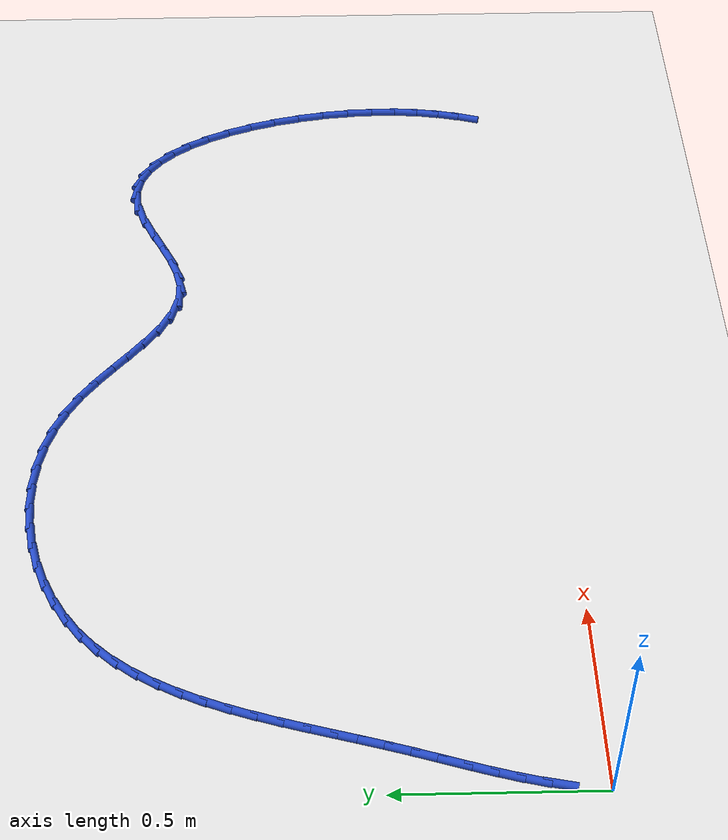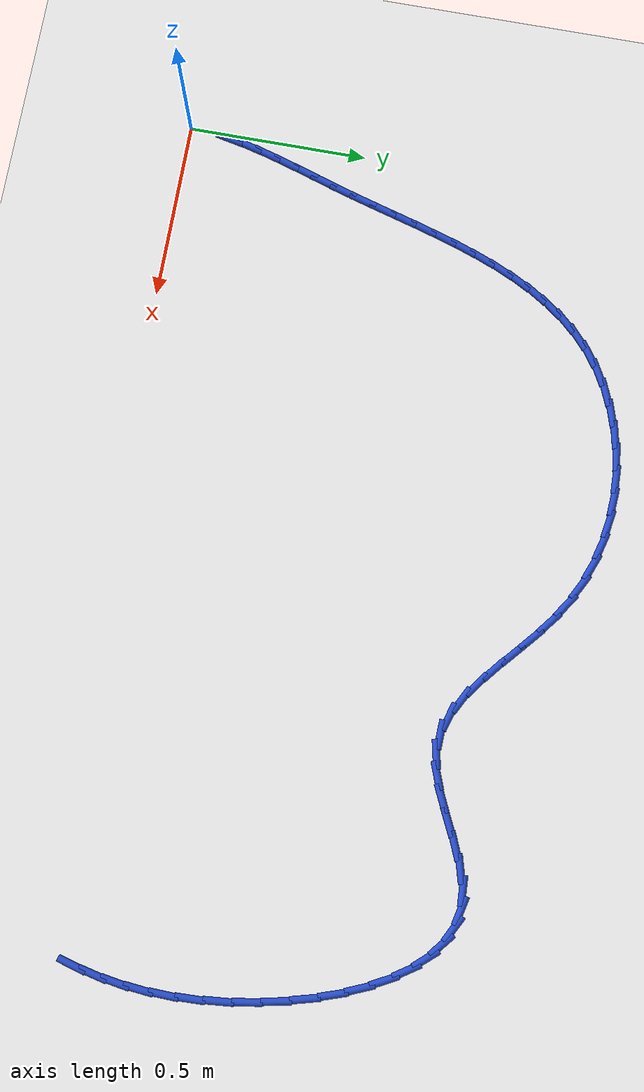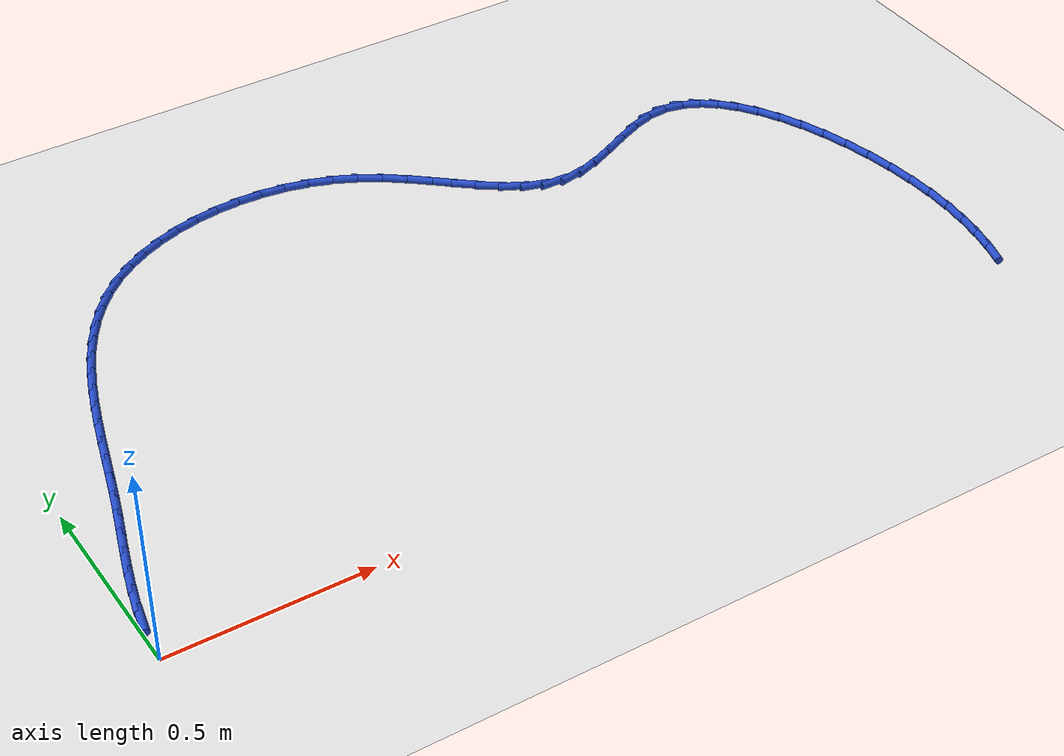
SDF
<sdf version="1.6">
 <world name="default">
  <model name="ground_plane">
   <static>1</static>
   <link name="link">
    <collision name="collision">
     <geometry><plane><normal>0 0 1</normal><size>100 100</size></plane></geometry>
     <surface><friction><ode><mu>100</mu><mu2>50</mu2></ode></friction></surface>
    </collision>
    <visual name="visual">
     <cast_shadows>0</cast_shadows>
     <geometry><plane><normal>0 0 1</normal><size>100 100</size></plane></geometry>
     <material>
      <script><uri>file://media/materials/scripts/gazebo.material</uri><name>Gazebo/WhiteGlow</name></script>
     </material>
    </visual>
   </link>
  </model>
  <model name="line">
   <link name="link_2">
    <pose>0.01386577655153484 0.11525291461923548 0.01 0 1.57 1.3590811794258975</pose>
    <collision name="collision">
     <geometry><cylinder><radius>0.01</radius><length>0.08</length></cylinder></geometry>
    </collision>
    <visual name="visual">
     <material>
      <script><name>Gazebo/Blue</name><uri>file://media/materials/scripts/gazebo.material</uri></script>
     </material>
     <geometry><cylinder><radius>0.01</radius><length>0.08</length></cylinder></geometry>
    </visual>
   </link>
   <link name="link_3">
    <pose>0.026100228607279605 0.17217424236328022 0.01 0 1.57 1.3148711279446732</pose>
    <collision name="collision">
     <geometry><cylinder><radius>0.01</radius><length>0.08</length></cylinder></geometry>
    </collision>
    <visual name="visual">
     <material>
      <script><name>Gazebo/Blue</name><uri>file://media/materials/scripts/gazebo.material</uri></script>
     </material>
     <geometry><cylinder><radius>0.01</radius><length>0.08</length></cylinder></geometry>
    </visual>
   </link>
   <link name="link_4">
    <pose>0.04095223064226751 0.22893426433253472 0.01 0 1.57 1.2836579148679896</pose>
    <collision name="collision">
     <geometry><cylinder><radius>0.01</radius><length>0.08</length></cylinder></geometry>
    </collision>
    <visual name="visual">
     <material>
      <script><name>Gazebo/Blue</name><uri>file://media/materials/scripts/gazebo.material</uri></script>
     </material>
     <geometry><cylinder><radius>0.01</radius><length>0.08</length></cylinder></geometry>
    </visual>
   </link>
   <link name="link_5">
    <pose>0.05773416325094213 0.28576456597869265 0.01 0 1.57 1.2651959013617817</pose>
    <collision name="collision">
     <geometry><cylinder><radius>0.01</radius><length>0.08</length></cylinder></geometry>
    </collision>
    <visual name="visual">
     <material>
      <script><name>Gazebo/Blue</name><uri>file://media/materials/scripts/gazebo.material</uri></script>
     </material>
     <geometry><cylinder><radius>0.01</radius><length>0.08</length></cylinder></geometry>
    </visual>
   </link>
   <link name="link_6">
    <pose>0.0757584070277472 0.3428967327534479 0.01 0 1.57 1.259113566414368</pose>
    <collision name="collision">
     <geometry><cylinder><radius>0.01</radius><length>0.08</length></cylinder></geometry>
    </collision>
    <visual name="visual">
     <material>
      <script><name>Gazebo/Blue</name><uri>file://media/materials/scripts/gazebo.material</uri></script>
     </material>
     <geometry><cylinder><radius>0.01</radius><length>0.08</length></cylinder></geometry>
    </visual>
   </link>
   <link name="link_7">
    <pose>0.09433734256712625 0.40056235010849417 0.01 0 1.57 1.2650073677703846</pose>
    <collision name="collision">
     <geometry><cylinder><radius>0.01</radius><length>0.08</length></cylinder></geometry>
    </collision>
    <visual name="visual">
     <material>
      <script><name>Gazebo/Blue</name><uri>file://media/materials/scripts/gazebo.material</uri></script>
     </material>
     <geometry><cylinder><radius>0.01</radius><length>0.08</length></cylinder></geometry>
    </visual>
   </link>
   <link name="link_8">
    <pose>0.11278335046352307 0.4589930034955255 0.01 0 1.57 1.2800323676406635</pose>
    <collision name="collision">
     <geometry><cylinder><radius>0.01</radius><length>0.08</length></cylinder></geometry>
    </collision>
    <visual name="visual">
     <material>
      <script><name>Gazebo/Blue</name><uri>file://media/materials/scripts/gazebo.material</uri></script>
     </material>
     <geometry><cylinder><radius>0.01</radius><length>0.08</length></cylinder></geometry>
    </visual>
   </link>
   <link name="link_9">
    <pose>0.13054385202172458 0.5183440488185911 0.01 0 1.57 1.2909774228402568</pose>
    <collision name="collision">
     <geometry><cylinder><radius>0.01</radius><length>0.08</length></cylinder></geometry>
    </collision>
    <visual name="visual">
     <material>
      <script><name>Gazebo/Blue</name><uri>file://media/materials/scripts/gazebo.material</uri></script>
     </material>
     <geometry><cylinder><radius>0.01</radius><length>0.08</length></cylinder></geometry>
    </visual>
   </link>
   <link name="link_10">
    <pose>0.14779051001666937 0.5783620126774921 0.01 0 1.57 1.2937372939414786</pose>
    <collision name="collision">
     <geometry><cylinder><radius>0.01</radius><length>0.08</length></cylinder></geometry>
    </collision>
    <visual name="visual">
     <material>
      <script><name>Gazebo/Blue</name><uri>file://media/materials/scripts/gazebo.material</uri></script>
     </material>
     <geometry><cylinder><radius>0.01</radius><length>0.08</length></cylinder></geometry>
    </visual>
   </link>
   <link name="link_11">
    <pose>0.16493675277086434 0.6386569466914084 0.01 0 1.57 1.2884364461176991</pose>
    <collision name="collision">
     <geometry><cylinder><radius>0.01</radius><length>0.08</length></cylinder></geometry>
    </collision>
    <visual name="visual">
     <material>
      <script><name>Gazebo/Blue</name><uri>file://media/materials/scripts/gazebo.material</uri></script>
     </material>
     <geometry><cylinder><radius>0.01</radius><length>0.08</length></cylinder></geometry>
    </visual>
   </link>
   <link name="link_12">
    <pose>0.18239617726653856 0.6988388072722728 0.01 0 1.57 1.27500115672307</pose>
    <collision name="collision">
     <geometry><cylinder><radius>0.01</radius><length>0.08</length></cylinder></geometry>
    </collision>
    <visual name="visual">
     <material>
      <script><name>Gazebo/Blue</name><uri>file://media/materials/scripts/gazebo.material</uri></script>
     </material>
     <geometry><cylinder><radius>0.01</radius><length>0.08</length></cylinder></geometry>
    </visual>
   </link>
   <link name="link_13">
    <pose>0.20058238048592122 0.7585175508320178 0.01 0 1.57 1.2531638627250472</pose>
    <collision name="collision">
     <geometry><cylinder><radius>0.01</radius><length>0.08</length></cylinder></geometry>
    </collision>
    <visual name="visual">
     <material>
      <script><name>Gazebo/Blue</name><uri>file://media/materials/scripts/gazebo.material</uri></script>
     </material>
     <geometry><cylinder><radius>0.01</radius><length>0.08</length></cylinder></geometry>
    </visual>
   </link>
   <link name="link_14">
    <pose>0.21990895941124153 0.8173031337825761 0.01 0 1.57 1.2224770346528062</pose>
    <collision name="collision">
     <geometry><cylinder><radius>0.01</radius><length>0.08</length></cylinder></geometry>
    </collision>
    <visual name="visual">
     <material>
      <script><name>Gazebo/Blue</name><uri>file://media/materials/scripts/gazebo.material</uri></script>
     </material>
     <geometry><cylinder><radius>0.01</radius><length>0.08</length></cylinder></geometry>
    </visual>
   </link>
   <link name="link_15">
    <pose>0.24078951102472868 0.8748055125358808 0.01 0 1.57 1.1823405745901034</pose>
    <collision name="collision">
     <geometry><cylinder><radius>0.01</radius><length>0.08</length></cylinder></geometry>
    </collision>
    <visual name="visual">
     <material>
      <script><name>Gazebo/Blue</name><uri>file://media/materials/scripts/gazebo.material</uri></script>
     </material>
     <geometry><cylinder><radius>0.01</radius><length>0.08</length></cylinder></geometry>
    </visual>
   </link>
   <link name="link_16">
    <pose>0.2636376323086118 0.9306346435038642 0.01 0 1.57 1.1320549828559676</pose>
    <collision name="collision">
     <geometry><cylinder><radius>0.01</radius><length>0.08</length></cylinder></geometry>
    </collision>
    <visual name="visual">
     <material>
      <script><name>Gazebo/Blue</name><uri>file://media/materials/scripts/gazebo.material</uri></script>
     </material>
     <geometry><cylinder><radius>0.01</radius><length>0.08</length></cylinder></geometry>
    </visual>
   </link>
   <link name="link_17">
    <pose>0.28886692024512 0.9844004830984588 0.01 0 1.57 1.0709178700684836</pose>
    <collision name="collision">
     <geometry><cylinder><radius>0.01</radius><length>0.08</length></cylinder></geometry>
    </collision>
    <visual name="visual">
     <material>
      <script><name>Gazebo/Blue</name><uri>file://media/materials/scripts/gazebo.material</uri></script>
     </material>
     <geometry><cylinder><radius>0.01</radius><length>0.08</length></cylinder></geometry>
    </visual>
   </link>
   <link name="link_18">
    <pose>0.3168909718164825 1.0357129877315976 0.01 0 1.57 0.9983838453431676</pose>
    <collision name="collision">
     <geometry><cylinder><radius>0.01</radius><length>0.08</length></cylinder></geometry>
    </collision>
    <visual name="visual">
     <material>
      <script><name>Gazebo/Blue</name><uri>file://media/materials/scripts/gazebo.material</uri></script>
     </material>
     <geometry><cylinder><radius>0.01</radius><length>0.08</length></cylinder></geometry>
    </visual>
   </link>
   <link name="link_19">
    <pose>0.3481233840049285 1.084182113815213 0.01 0 1.57 0.9143001866337734</pose>
    <collision name="collision">
     <geometry><cylinder><radius>0.01</radius><length>0.08</length></cylinder></geometry>
    </collision>
    <visual name="visual">
     <material>
      <script><name>Gazebo/Blue</name><uri>file://media/materials/scripts/gazebo.material</uri></script>
     </material>
     <geometry><cylinder><radius>0.01</radius><length>0.08</length></cylinder></geometry>
    </visual>
   </link>
   <link name="link_20">
    <pose>0.38297775379268717 1.1294178177612377 0.01 0 1.57 0.8192019366085078</pose>
    <collision name="collision">
     <geometry><cylinder><radius>0.01</radius><length>0.08</length></cylinder></geometry>
    </collision>
    <visual name="visual">
     <material>
      <script><name>Gazebo/Blue</name><uri>file://media/materials/scripts/gazebo.material</uri></script>
     </material>
     <geometry><cylinder><radius>0.01</radius><length>0.08</length></cylinder></geometry>
    </visual>
   </link>
   <link name="link_21">
    <pose>0.4218676781619875 1.1710300559816045 0.01 0 1.57 0.7145937820327017</pose>
    <collision name="collision">
     <geometry><cylinder><radius>0.01</radius><length>0.08</length></cylinder></geometry>
    </collision>
    <visual name="visual">
     <material>
      <script><name>Gazebo/Blue</name><uri>file://media/materials/scripts/gazebo.material</uri></script>
     </material>
     <geometry><cylinder><radius>0.01</radius><length>0.08</length></cylinder></geometry>
    </visual>
   </link>
   <link name="link_22">
    <pose>0.4652067540950589 1.208628784888246 0.01 0 1.57 0.6047818996127332</pose>
    <collision name="collision">
     <geometry><cylinder><radius>0.01</radius><length>0.08</length></cylinder></geometry>
    </collision>
    <visual name="visual">
     <material>
      <script><name>Gazebo/Blue</name><uri>file://media/materials/scripts/gazebo.material</uri></script>
     </material>
     <geometry><cylinder><radius>0.01</radius><length>0.08</length></cylinder></geometry>
    </visual>
   </link>
   <link name="link_23">
    <pose>0.5132656793358205 1.241846149881398 0.01 0 1.57 0.49996921096600055</pose>
    <collision name="collision">
     <geometry><cylinder><radius>0.01</radius><length>0.08</length></cylinder></geometry>
    </collision>
    <visual name="visual">
     <material>
      <script><name>Gazebo/Blue</name><uri>file://media/materials/scripts/gazebo.material</uri></script>
     </material>
     <geometry><cylinder><radius>0.01</radius><length>0.08</length></cylinder></geometry>
    </visual>
   </link>
   <link name="link_24">
    <pose>0.5655870509023512 1.2704273537762982 0.01 0 1.57 0.40142719704158564</pose>
    <collision name="collision">
     <geometry><cylinder><radius>0.01</radius><length>0.08</length></cylinder></geometry>
    </collision>
    <visual name="visual">
     <material>
      <script><name>Gazebo/Blue</name><uri>file://media/materials/scripts/gazebo.material</uri></script>
     </material>
     <geometry><cylinder><radius>0.01</radius><length>0.08</length></cylinder></geometry>
    </visual>
   </link>
   <link name="link_25">
    <pose>0.621482158363254 1.2941535161526936 0.01 0 1.57 0.3072726824263532</pose>
    <collision name="collision">
     <geometry><cylinder><radius>0.01</radius><length>0.08</length></cylinder></geometry>
    </collision>
    <visual name="visual">
     <material>
      <script><name>Gazebo/Blue</name><uri>file://media/materials/scripts/gazebo.material</uri></script>
     </material>
     <geometry><cylinder><radius>0.01</radius><length>0.08</length></cylinder></geometry>
    </visual>
   </link>
   <link name="link_26">
    <pose>0.6802621959078268 1.312805771400558 0.01 0 1.57 0.2156855179569332</pose>
    <collision name="collision">
     <geometry><cylinder><radius>0.01</radius><length>0.08</length></cylinder></geometry>
    </collision>
    <visual name="visual">
     <material>
      <script><name>Gazebo/Blue</name><uri>file://media/materials/scripts/gazebo.material</uri></script>
     </material>
     <geometry><cylinder><radius>0.01</radius><length>0.08</length></cylinder></geometry>
    </visual>
   </link>
   <link name="link_27">
    <pose>0.7412383577253676 1.326165253909868 0.01 0 1.57 0.12494444446800197</pose>
    <collision name="collision">
     <geometry><cylinder><radius>0.01</radius><length>0.08</length></cylinder></geometry>
    </collision>
    <visual name="visual">
     <material>
      <script><name>Gazebo/Blue</name><uri>file://media/materials/scripts/gazebo.material</uri></script>
     </material>
     <geometry><cylinder><radius>0.01</radius><length>0.08</length></cylinder></geometry>
    </visual>
   </link>
   <link name="link_28">
    <pose>0.803721838005173 1.3340130980705964 0.01 0 1.57 0.03343577378511071</pose>
    <collision name="collision">
     <geometry><cylinder><radius>0.01</radius><length>0.08</length></cylinder></geometry>
    </collision>
    <visual name="visual">
     <material>
      <script><name>Gazebo/Blue</name><uri>file://media/materials/scripts/gazebo.material</uri></script>
     </material>
     <geometry><cylinder><radius>0.01</radius><length>0.08</length></cylinder></geometry>
    </visual>
   </link>
   <link name="link_29">
    <pose>0.8670238309365417 1.3361304382727188 0.01 0 1.57 -0.06033856531937551</pose>
    <collision name="collision">
     <geometry><cylinder><radius>0.01</radius><length>0.08</length></cylinder></geometry>
    </collision>
    <visual name="visual">
     <material>
      <script><name>Gazebo/Blue</name><uri>file://media/materials/scripts/gazebo.material</uri></script>
     </material>
     <geometry><cylinder><radius>0.01</radius><length>0.08</length></cylinder></geometry>
    </visual>
   </link>
   <link name="link_30">
    <pose>0.9304555307087701 1.3322984089062087 0.01 0 1.57 -0.15773469241341845</pose>
    <collision name="collision">
     <geometry><cylinder><radius>0.01</radius><length>0.08</length></cylinder></geometry>
    </collision>
    <visual name="visual">
     <material>
      <script><name>Gazebo/Blue</name><uri>file://media/materials/scripts/gazebo.material</uri></script>
     </material>
     <geometry><cylinder><radius>0.01</radius><length>0.08</length></cylinder></geometry>
    </visual>
   </link>
   <link name="link_31">
    <pose>0.9933281315111571 1.322298144361042 0.01 0 1.57 -0.2599070789573445</pose>
    <collision name="collision">
     <geometry><cylinder><radius>0.01</radius><length>0.08</length></cylinder></geometry>
    </collision>
    <visual name="visual">
     <material>
      <script><name>Gazebo/Blue</name><uri>file://media/materials/scripts/gazebo.material</uri></script>
     </material>
     <geometry><cylinder><radius>0.01</radius><length>0.08</length></cylinder></geometry>
    </visual>
   </link>
   <link name="link_32">
    <pose>1.054952827532999 1.3059107790271922 0.01 0 1.57 -0.367705183871953</pose>
    <collision name="collision">
     <geometry><cylinder><radius>0.01</radius><length>0.08</length></cylinder></geometry>
    </collision>
    <visual name="visual">
     <material>
      <script><name>Gazebo/Blue</name><uri>file://media/materials/scripts/gazebo.material</uri></script>
     </material>
     <geometry><cylinder><radius>0.01</radius><length>0.08</length></cylinder></geometry>
    </visual>
   </link>
   <link name="link_33">
    <pose>1.1146408129635943 1.2829174472946352 0.01 0 1.57 -0.48151983372926044</pose>
    <collision name="collision">
     <geometry><cylinder><radius>0.01</radius><length>0.08</length></cylinder></geometry>
    </collision>
    <visual name="visual">
     <material>
      <script><name>Gazebo/Blue</name><uri>file://media/materials/scripts/gazebo.material</uri></script>
     </material>
     <geometry><cylinder><radius>0.01</radius><length>0.08</length></cylinder></geometry>
    </visual>
   </link>
   <link name="link_34">
    <pose>1.1717034833889677 1.2530996833517214 0.01 0 1.57 -0.5910918396478422</pose>
    <collision name="collision">
     <geometry><cylinder><radius>0.01</radius><length>0.08</length></cylinder></geometry>
    </collision>
    <visual name="visual">
     <material>
      <script><name>Gazebo/Blue</name><uri>file://media/materials/scripts/gazebo.material</uri></script>
     </material>
     <geometry><cylinder><radius>0.01</radius><length>0.08</length></cylinder></geometry>
    </visual>
   </link>
   <link name="link_35">
    <pose>1.2257488259638794 1.2168277937558476 0.01 0 1.57 -0.6671867549664544</pose>
    <collision name="collision">
     <geometry><cylinder><radius>0.01</radius><length>0.08</length></cylinder></geometry>
    </collision>
    <visual name="visual">
     <material>
      <script><name>Gazebo/Blue</name><uri>file://media/materials/scripts/gazebo.material</uri></script>
     </material>
     <geometry><cylinder><radius>0.01</radius><length>0.08</length></cylinder></geometry>
    </visual>
   </link>
   <link name="link_36">
    <pose>1.2772757904174872 1.1762407602425045 0.01 0 1.57 -0.70693661563271</pose>
    <collision name="collision">
     <geometry><cylinder><radius>0.01</radius><length>0.08</length></cylinder></geometry>
    </collision>
    <visual name="visual">
     <material>
      <script><name>Gazebo/Blue</name><uri>file://media/materials/scripts/gazebo.material</uri></script>
     </material>
     <geometry><cylinder><radius>0.01</radius><length>0.08</length></cylinder></geometry>
    </visual>
   </link>
   <link name="link_37">
    <pose>1.3269499365797546 1.1338083070027951 0.01 0 1.57 -0.7115668724138712</pose>
    <collision name="collision">
     <geometry><cylinder><radius>0.01</radius><length>0.08</length></cylinder></geometry>
    </collision>
    <visual name="visual">
     <material>
      <script><name>Gazebo/Blue</name><uri>file://media/materials/scripts/gazebo.material</uri></script>
     </material>
     <geometry><cylinder><radius>0.01</radius><length>0.08</length></cylinder></geometry>
    </visual>
   </link>
   <link name="link_38">
    <pose>1.3754368242806454 1.0920001582278231 0.01 0 1.57 -0.6790731179405616</pose>
    <collision name="collision">
     <geometry><cylinder><radius>0.01</radius><length>0.08</length></cylinder></geometry>
    </collision>
    <visual name="visual">
     <material>
      <script><name>Gazebo/Blue</name><uri>file://media/materials/scripts/gazebo.material</uri></script>
     </material>
     <geometry><cylinder><radius>0.01</radius><length>0.08</length></cylinder></geometry>
    </visual>
   </link>
   <link name="link_39">
    <pose>1.4234020133501237 1.0532860381086926 0.01 0 1.57 -0.6033507489742822</pose>
    <collision name="collision">
     <geometry><cylinder><radius>0.01</radius><length>0.08</length></cylinder></geometry>
    </collision>
    <visual name="visual">
     <material>
      <script><name>Gazebo/Blue</name><uri>file://media/materials/scripts/gazebo.material</uri></script>
     </material>
     <geometry><cylinder><radius>0.01</radius><length>0.08</length></cylinder></geometry>
    </visual>
   </link>
   <link name="link_40">
    <pose>1.471511063618152 1.020135670836508 0.01 0 1.57 -0.47434478672188135</pose>
    <collision name="collision">
     <geometry><cylinder><radius>0.01</radius><length>0.08</length></cylinder></geometry>
    </collision>
    <visual name="visual">
     <material>
      <script><name>Gazebo/Blue</name><uri>file://media/materials/scripts/gazebo.material</uri></script>
     </material>
     <geometry><cylinder><radius>0.01</radius><length>0.08</length></cylinder></geometry>
    </visual>
   </link>
   <link name="link_41">
    <pose>1.5204295349146955 0.9950187806023719 0.01 0 1.57 -0.2822498783379509</pose>
    <collision name="collision">
     <geometry><cylinder><radius>0.01</radius><length>0.08</length></cylinder></geometry>
    </collision>
    <visual name="visual">
     <material>
      <script><name>Gazebo/Blue</name><uri>file://media/materials/scripts/gazebo.material</uri></script>
     </material>
     <geometry><cylinder><radius>0.01</radius><length>0.08</length></cylinder></geometry>
    </visual>
   </link>
   <link name="link_42">
    <pose>1.570822987069717 0.9804050915973891 0.01 0 1.57 -0.03137956941343361</pose>
    <collision name="collision">
     <geometry><cylinder><radius>0.01</radius><length>0.08</length></cylinder></geometry>
    </collision>
    <visual name="visual">
     <material>
      <script><name>Gazebo/Blue</name><uri>file://media/materials/scripts/gazebo.material</uri></script>
     </material>
     <geometry><cylinder><radius>0.01</radius><length>0.08</length></cylinder></geometry>
    </visual>
   </link>
   <link name="link_43">
    <pose>1.6233551454408792 0.9787561138147718 0.01 0 1.57 0.21255310726368512</pose>
    <collision name="collision">
     <geometry><cylinder><radius>0.01</radius><length>0.08</length></cylinder></geometry>
    </collision>
    <visual name="visual">
     <material>
      <script><name>Gazebo/Blue</name><uri>file://media/materials/scripts/gazebo.material</uri></script>
     </material>
     <geometry><cylinder><radius>0.01</radius><length>0.08</length></cylinder></geometry>
    </visual>
   </link>
   <link name="link_44">
    <pose>1.6782590988857033 0.9906051005877737 0.01 0 1.57 0.3631822019763246</pose>
    <collision name="collision">
     <geometry><cylinder><radius>0.01</radius><length>0.08</length></cylinder></geometry>
    </collision>
    <visual name="visual">
     <material>
      <script><name>Gazebo/Blue</name><uri>file://media/materials/scripts/gazebo.material</uri></script>
     </material>
     <geometry><cylinder><radius>0.01</radius><length>0.08</length></cylinder></geometry>
    </visual>
   </link>
   <link name="link_45">
    <pose>1.7347857804391211 1.012087516150485 0.01 0 1.57 0.43544948144664286</pose>
    <collision name="collision">
     <geometry><cylinder><radius>0.01</radius><length>0.08</length></cylinder></geometry>
    </collision>
    <visual name="visual">
     <material>
      <script><name>Gazebo/Blue</name><uri>file://media/materials/scripts/gazebo.material</uri></script>
     </material>
     <geometry><cylinder><radius>0.01</radius><length>0.08</length></cylinder></geometry>
    </visual>
   </link>
   <link name="link_46">
    <pose>1.7920498580949618 1.038728672153698 0.01 0 1.57 0.4462308251281981</pose>
    <collision name="collision">
     <geometry><cylinder><radius>0.01</radius><length>0.08</length></cylinder></geometry>
    </collision>
    <visual name="visual">
     <material>
      <script><name>Gazebo/Blue</name><uri>file://media/materials/scripts/gazebo.material</uri></script>
     </material>
     <geometry><cylinder><radius>0.01</radius><length>0.08</length></cylinder></geometry>
    </visual>
   </link>
   <link name="link_47">
    <pose>1.8491659998470547 1.0660538802482045 0.01 0 1.57 0.39732124639767985</pose>
    <collision name="collision">
     <geometry><cylinder><radius>0.01</radius><length>0.08</length></cylinder></geometry>
    </collision>
    <visual name="visual">
     <material>
      <script><name>Gazebo/Blue</name><uri>file://media/materials/scripts/gazebo.material</uri></script>
     </material>
     <geometry><cylinder><radius>0.01</radius><length>0.08</length></cylinder></geometry>
    </visual>
   </link>
   <link name="link_48">
    <pose>1.9052488736892295 1.089588452084797 0.01 0 1.57 0.27477548984022965</pose>
    <collision name="collision">
     <geometry><cylinder><radius>0.01</radius><length>0.08</length></cylinder></geometry>
    </collision>
    <visual name="visual">
     <material>
      <script><name>Gazebo/Blue</name><uri>file://media/materials/scripts/gazebo.material</uri></script>
     </material>
     <geometry><cylinder><radius>0.01</radius><length>0.08</length></cylinder></geometry>
    </visual>
   </link>
   <link name="link_49">
    <pose>1.9594131476153167 1.104857699314269 0.01 0 1.57 0.05362298056653864</pose>
    <collision name="collision">
     <geometry><cylinder><radius>0.01</radius><length>0.08</length></cylinder></geometry>
    </collision>
    <visual name="visual">
     <material>
      <script><name>Gazebo/Blue</name><uri>file://media/materials/scripts/gazebo.material</uri></script>
     </material>
     <geometry><cylinder><radius>0.01</radius><length>0.08</length></cylinder></geometry>
    </visual>
   </link>
   <link name="link_50">
    <pose>2.0108045132462475 1.107616101880759 0.01 0 1.57 -0.22054669229838392</pose>
    <collision name="collision">
     <geometry><cylinder><radius>0.01</radius><length>0.08</length></cylinder></geometry>
    </collision>
    <visual name="visual">
     <material>
      <script><name>Gazebo/Blue</name><uri>file://media/materials/scripts/gazebo.material</uri></script>
     </material>
     <geometry><cylinder><radius>0.01</radius><length>0.08</length></cylinder></geometry>
    </visual>
   </link>
   <link name="link_51">
    <pose>2.059000867022516 1.096810791591668 0.01 0 1.57 -0.47483819065993577</pose>
    <collision name="collision">
     <geometry><cylinder><radius>0.01</radius><length>0.08</length></cylinder></geometry>
    </collision>
    <visual name="visual">
     <material>
      <script><name>Gazebo/Blue</name><uri>file://media/materials/scripts/gazebo.material</uri></script>
     </material>
     <geometry><cylinder><radius>0.01</radius><length>0.08</length></cylinder></geometry>
    </visual>
   </link>
   <link name="link_52">
    <pose>2.1038971746488007 1.0737310577946892 0.01 0 1.57 -0.6865602318286195</pose>
    <collision name="collision">
     <geometry><cylinder><radius>0.01</radius><length>0.08</length></cylinder></geometry>
    </collision>
    <visual name="visual">
     <material>
      <script><name>Gazebo/Blue</name><uri>file://media/materials/scripts/gazebo.material</uri></script>
     </material>
     <geometry><cylinder><radius>0.01</radius><length>0.08</length></cylinder></geometry>
    </visual>
   </link>
   <link name="link_53">
    <pose>2.1453957034036257 1.0397201258009423 0.01 0 1.57 -0.8538664117070126</pose>
    <collision name="collision">
     <geometry><cylinder><radius>0.01</radius><length>0.08</length></cylinder></geometry>
    </collision>
    <visual name="visual">
     <material>
      <script><name>Gazebo/Blue</name><uri>file://media/materials/scripts/gazebo.material</uri></script>
     </material>
     <geometry><cylinder><radius>0.01</radius><length>0.08</length></cylinder></geometry>
    </visual>
   </link>
   <link name="link_54">
    <pose>2.1833987205655143 0.9961212209215462 0.01 0 1.57 -0.9848351081472978</pose>
    <collision name="collision">
     <geometry><cylinder><radius>0.01</radius><length>0.08</length></cylinder></geometry>
    </collision>
    <visual name="visual">
     <material>
      <script><name>Gazebo/Blue</name><uri>file://media/materials/scripts/gazebo.material</uri></script>
     </material>
     <geometry><cylinder><radius>0.01</radius><length>0.08</length></cylinder></geometry>
    </visual>
   </link>
   <link name="link_55">
    <pose>2.2178084934129907 0.9442775684676206 0.01 0 1.57 -1.0889843813083562</pose>
    <collision name="collision">
     <geometry><cylinder><radius>0.01</radius><length>0.08</length></cylinder></geometry>
    </collision>
    <visual name="visual">
     <material>
      <script><name>Gazebo/Blue</name><uri>file://media/materials/scripts/gazebo.material</uri></script>
     </material>
     <geometry><cylinder><radius>0.01</radius><length>0.08</length></cylinder></geometry>
    </visual>
   </link>
   <link name="link_56">
    <pose>2.2485272892245787 0.8855323937502857 0.01 0 1.57 -1.1741915837412584</pose>
    <collision name="collision">
     <geometry><cylinder><radius>0.01</radius><length>0.08</length></cylinder></geometry>
    </collision>
    <visual name="visual">
     <material>
      <script><name>Gazebo/Blue</name><uri>file://media/materials/scripts/gazebo.material</uri></script>
     </material>
     <geometry><cylinder><radius>0.01</radius><length>0.08</length></cylinder></geometry>
    </visual>
   </link>
   <link name="link_57">
    <pose>2.275457375278802 0.8212289220806605 0.01 0 1.57 -1.2463669102082737</pose>
    <collision name="collision">
     <geometry><cylinder><radius>0.01</radius><length>0.08</length></cylinder></geometry>
    </collision>
    <visual name="visual">
     <material>
      <script><name>Gazebo/Blue</name><uri>file://media/materials/scripts/gazebo.material</uri></script>
     </material>
     <geometry><cylinder><radius>0.01</radius><length>0.08</length></cylinder></geometry>
    </visual>
   </link>
   <link name="link_58">
    <pose>2.2985010188541843 0.7527103787698639 0.01 0 1.57 -1.3099058443290676</pose>
    <collision name="collision">
     <geometry><cylinder><radius>0.01</radius><length>0.08</length></cylinder></geometry>
    </collision>
    <visual name="visual">
     <material>
      <script><name>Gazebo/Blue</name><uri>file://media/materials/scripts/gazebo.material</uri></script>
     </material>
     <geometry><cylinder><radius>0.01</radius><length>0.08</length></cylinder></geometry>
    </visual>
   </link>
   <link name="link_59">
    <pose>2.3175604872292483 0.6813199891290156 0.01 0 1.57 -1.3682139492461083</pose>
    <collision name="collision">
     <geometry><cylinder><radius>0.01</radius><length>0.08</length></cylinder></geometry>
    </collision>
    <visual name="visual">
     <material>
      <script><name>Gazebo/Blue</name><uri>file://media/materials/scripts/gazebo.material</uri></script>
     </material>
     <geometry><cylinder><radius>0.01</radius><length>0.08</length></cylinder></geometry>
    </visual>
   </link>
   <link name="link_60">
    <pose>2.33253804768252 0.6084009784692365 0.01 0 1.57 -1.4241511820814876</pose>
    <collision name="collision">
     <geometry><cylinder><radius>0.01</radius><length>0.08</length></cylinder></geometry>
    </collision>
    <visual name="visual">
     <material>
      <script><name>Gazebo/Blue</name><uri>file://media/materials/scripts/gazebo.material</uri></script>
     </material>
     <geometry><cylinder><radius>0.01</radius><length>0.08</length></cylinder></geometry>
    </visual>
   </link>
   <link name="link_61">
    <pose>2.343335967492522 0.5352965721016447 0.01 0 1.57 -1.4804128611621707</pose>
    <collision name="collision">
     <geometry><cylinder><radius>0.01</radius><length>0.08</length></cylinder></geometry>
    </collision>
    <visual name="visual">
     <material>
      <script><name>Gazebo/Blue</name><uri>file://media/materials/scripts/gazebo.material</uri></script>
     </material>
     <geometry><cylinder><radius>0.01</radius><length>0.08</length></cylinder></geometry>
    </visual>
   </link>
   <link name="link_62">
    <pose>2.3498565139377767 0.4633499953373595 0.01 0 1.57 -1.5399116017438308</pose>
    <collision name="collision">
     <geometry><cylinder><radius>0.01</radius><length>0.08</length></cylinder></geometry>
    </collision>
    <visual name="visual">
     <material>
      <script><name>Gazebo/Blue</name><uri>file://media/materials/scripts/gazebo.material</uri></script>
     </material>
     <geometry><cylinder><radius>0.01</radius><length>0.08</length></cylinder></geometry>
    </visual>
   </link>
   <link name="link_63">
    <pose>2.3520020079349417 0.3939042813540547 0.01 0 1.57 1.5371141396255887</pose>
    <collision name="collision">
     <geometry><cylinder><radius>0.01</radius><length>0.08</length></cylinder></geometry>
    </collision>
    <visual name="visual">
     <material>
      <script><name>Gazebo/Blue</name><uri>file://media/materials/scripts/gazebo.material</uri></script>
     </material>
     <geometry><cylinder><radius>0.01</radius><length>0.08</length></cylinder></geometry>
    </visual>
   </link>
   <link name="link_64">
    <pose>2.349778981371282 0.3279291764131687 0.01 0 1.57 1.4712114224482464</pose>
    <collision name="collision">
     <geometry><cylinder><radius>0.01</radius><length>0.08</length></cylinder></geometry>
    </collision>
    <visual name="visual">
     <material>
      <script><name>Gazebo/Blue</name><uri>file://media/materials/scripts/gazebo.material</uri></script>
     </material>
     <geometry><cylinder><radius>0.01</radius><length>0.08</length></cylinder></geometry>
    </visual>
   </link>
   <link name="link_65">
    <pose>2.343515598914035 0.26524232822169885 0.01 0 1.57 1.4065160458078023</pose>
    <collision name="collision">
     <geometry><cylinder><radius>0.01</radius><length>0.08</length></cylinder></geometry>
    </collision>
    <visual name="visual">
     <material>
      <script><name>Gazebo/Blue</name><uri>file://media/materials/scripts/gazebo.material</uri></script>
     </material>
     <geometry><cylinder><radius>0.01</radius><length>0.08</length></cylinder></geometry>
    </visual>
   </link>
   <link name="link_66">
    <pose>2.333601880719921 0.20543981621234336 0.01 0 1.57 1.3448944349522076</pose>
    <collision name="collision">
     <geometry><cylinder><radius>0.01</radius><length>0.08</length></cylinder></geometry>
    </collision>
    <visual name="visual">
     <material>
      <script><name>Gazebo/Blue</name><uri>file://media/materials/scripts/gazebo.material</uri></script>
     </material>
     <geometry><cylinder><radius>0.01</radius><length>0.08</length></cylinder></geometry>
    </visual>
   </link>
   <link name="link_67">
    <pose>2.320427846945658 0.14811771981779945 0.01 0 1.57 1.2881531719058292</pose>
    <collision name="collision">
     <geometry><cylinder><radius>0.01</radius><length>0.08</length></cylinder></geometry>
    </collision>
    <visual name="visual">
     <material>
      <script><name>Gazebo/Blue</name><uri>file://media/materials/scripts/gazebo.material</uri></script>
     </material>
     <geometry><cylinder><radius>0.01</radius><length>0.08</length></cylinder></geometry>
    </visual>
   </link>
  </model>
 </world>
</sdf>
